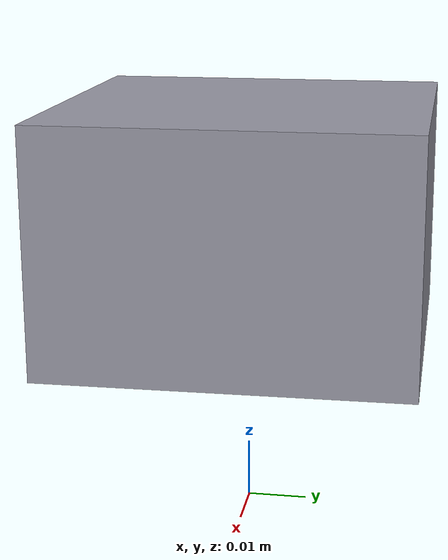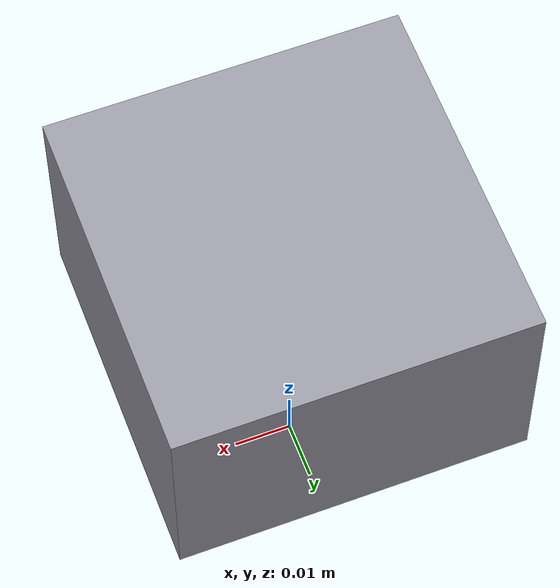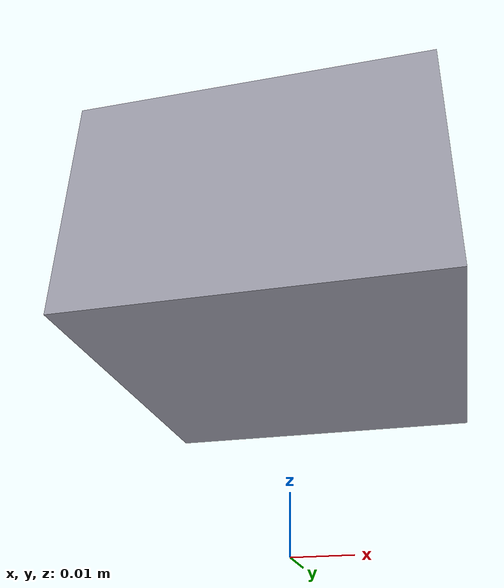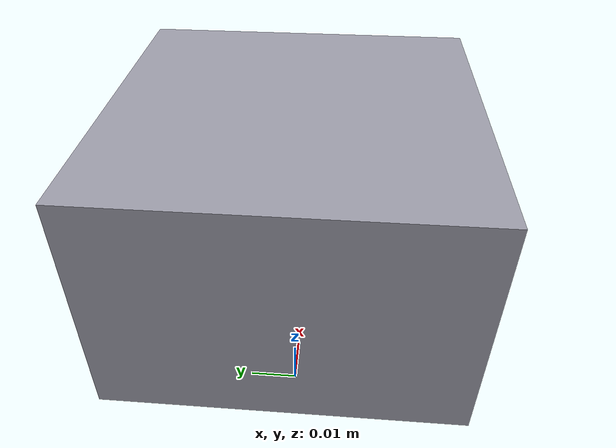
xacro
<?xml version="1.0"?>
<robot xmlns:xacro="http://www.ros.org/wiki/xacro" name="tactile_pad">

  <link name="world"/>

  <link name="pad">
    <inertial>
      <mass value="0.1"/>
      <origin xyz="0 0 0"/>
      <inertia ixx="1e-4" ixy="0" ixz="0" iyy="1e-4" iyz="0" izz="1e-4"/>
    </inertial>
    <collision>
      <origin xyz="0 0 0"/>
      <geometry><box size="0.06 0.06 0.04"/></geometry>
    </collision>
    <visual>
      <origin xyz="0 0 0"/>
      <geometry><box size="0.06 0.06 0.04"/></geometry>
      <material name="pad_grey"><color rgba="0.6 0.6 0.65 1"/></material>
    </visual>
  </link>

  <joint name="slide" type="prismatic">
    <parent link="world"/>
    <child link="pad"/>
    <origin xyz="0 0 0.05"/>
    <axis xyz="0 0 1"/>
    <limit effort="100" velocity="10" lower="-0.5" upper="0.5"/>
  </joint>

  <mujoco>
    <extension>
      <plugin plugin="mujoco.sensor.touch_grid"/>
    </extension>

    <reference name="pad">
      <!-- top of the pad, imaging downwards (-z) at the contact face -->
      <site name="pad_touch_site" size="0.005" pos="0 0 0.02"/>
    </reference>

    <sensor>
      <plugin name="pad_touch_grid" plugin="mujoco.sensor.touch_grid"
              objtype="site" objname="pad_touch_site">
        <!-- normal + two tangential force channels -->
        <config key="nchannel" value="3"/>
        <config key="size"     value="7 7"/>
        <config key="fov"      value="45 45"/>
        <config key="gamma"    value="0"/>
      </plugin>
    </sensor>
  </mujoco>

  <ros2_control name="TactilePadHW" type="system">
    <hardware>
      <plugin>mujoco_ros2_control/MujocoSystem</plugin>
    </hardware>

    <joint name="slide">
      <command_interface name="effort"/>
      <state_interface name="position"/>
      <state_interface name="velocity"/>
      <state_interface name="effort"/>
    </joint>
  </ros2_control>

  <mujoco_ros2_plugin name="pad_touch"
                      plugin="mujoco_ros2_control_examples/TouchGridSensor">
    <param name="site">pad_touch_site</param>
  </mujoco_ros2_plugin>

</robot>
